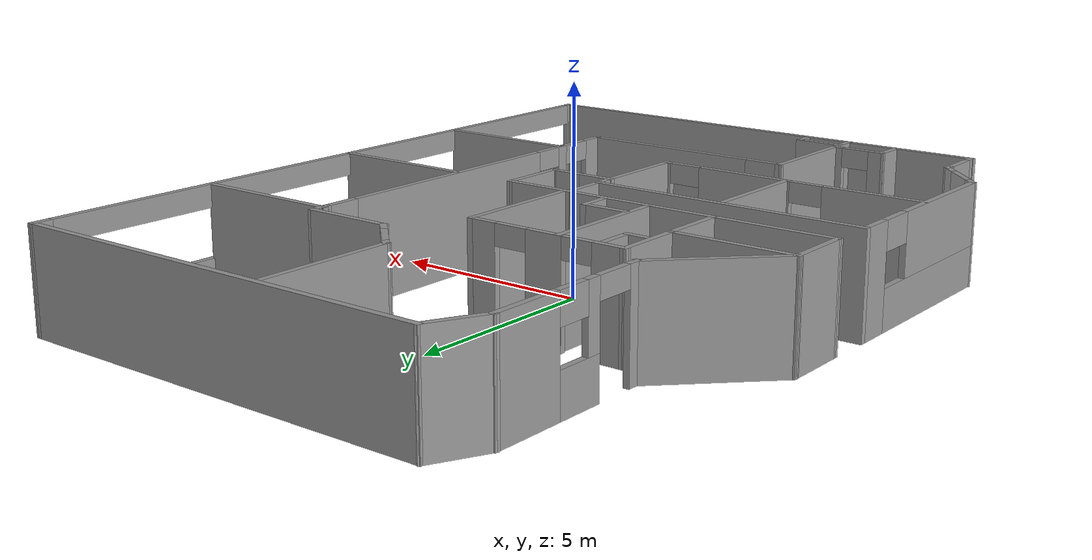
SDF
<?xml version='1.0'?>
<sdf version='1.7'>
  <model name='lake_harbour_office_old'>
    <pose>0.230686 0.066503 0 0 -0 0</pose>
    <link name='Wall_0'>
      <pose>0.435117 -5.60543 0 0 -0 2e-06</pose>
      <visual name='Wall_0_Visual_0'>
        <pose>-2.75685 0 1.25 0 -0 0</pose>
        <geometry>
          <box>
            <size>0.194017 0.15 2.5</size>
          </box>
        </geometry>
        <material>
          <script>
            <uri>file://media/materials/scripts/gazebo.material</uri>
            <name>Gazebo/Grey</name>
          </script>
          <ambient>1 1 1 1</ambient>
        </material>
        <meta>
          <layer>0</layer>
        </meta>
      </visual>
      <collision name='Wall_0_Collision_0'>
        <geometry>
          <box>
            <size>0.194017 0.15 2.5</size>
          </box>
        </geometry>
        <pose>-2.75685 0 1.25 0 -0 0</pose>
      </collision>
      <visual name='Wall_0_Visual_1'>
        <pose>0.513518 0 1.25 0 -0 0</pose>
        <geometry>
          <box>
            <size>4.68067 0.15 2.5</size>
          </box>
        </geometry>
        <material>
          <script>
            <uri>file://media/materials/scripts/gazebo.material</uri>
            <name>Gazebo/Grey</name>
          </script>
          <ambient>1 1 1 1</ambient>
        </material>
        <meta>
          <layer>0</layer>
        </meta>
      </visual>
      <collision name='Wall_0_Collision_1'>
        <geometry>
          <box>
            <size>4.68067 0.15 2.5</size>
          </box>
        </geometry>
        <pose>0.513518 0 1.25 0 -0 0</pose>
      </collision>
      <visual name='Wall_0_Visual_2'>
        <pose>-2.24333 0 2.25 0 -0 0</pose>
        <geometry>
          <box>
            <size>0.833019 0.15 0.5</size>
          </box>
        </geometry>
        <material>
          <script>
            <uri>file://media/materials/scripts/gazebo.material</uri>
            <name>Gazebo/Grey</name>
          </script>
          <ambient>1 1 1 1</ambient>
        </material>
        <meta>
          <layer>0</layer>
        </meta>
      </visual>
      <collision name='Wall_0_Collision_2'>
        <geometry>
          <box>
            <size>0.833019 0.15 0.5</size>
          </box>
        </geometry>
        <pose>-2.24333 0 2.25 0 -0 0</pose>
      </collision>
    </link>
    <link name='Wall_1'>
      <pose>3.2104 -0.472625 0 0 -0 1.57149</pose>
      <visual name='Wall_1_Visual_0'>
        <pose>-4.88335 0 1.25 0 -0 0</pose>
        <geometry>
          <box>
            <size>0.648917 0.15 2.5</size>
          </box>
        </geometry>
        <material>
          <script>
            <uri>file://media/materials/scripts/gazebo.material</uri>
            <name>Gazebo/Grey</name>
          </script>
          <ambient>1 1 1 1</ambient>
        </material>
        <meta>
          <layer>0</layer>
        </meta>
      </visual>
      <collision name='Wall_1_Collision_0'>
        <geometry>
          <box>
            <size>0.648917 0.15 2.5</size>
          </box>
        </geometry>
        <pose>-4.88335 0 1.25 0 -0 0</pose>
      </collision>
      <visual name='Wall_1_Visual_1'>
        <pose>-3.55701 0 1.25 0 -0 0</pose>
        <geometry>
          <box>
            <size>0.313004 0.15 2.5</size>
          </box>
        </geometry>
        <material>
          <script>
            <uri>file://media/materials/scripts/gazebo.material</uri>
            <name>Gazebo/Grey</name>
          </script>
          <ambient>1 1 1 1</ambient>
        </material>
        <meta>
          <layer>0</layer>
        </meta>
      </visual>
      <collision name='Wall_1_Collision_1'>
        <geometry>
          <box>
            <size>0.313004 0.15 2.5</size>
          </box>
        </geometry>
        <pose>-3.55701 0 1.25 0 -0 0</pose>
      </collision>
      <visual name='Wall_1_Visual_2'>
        <pose>0.61801 0 1.25 0 -0 0</pose>
        <geometry>
          <box>
            <size>6.45307 0.15 2.5</size>
          </box>
        </geometry>
        <material>
          <script>
            <uri>file://media/materials/scripts/gazebo.material</uri>
            <name>Gazebo/Grey</name>
          </script>
          <ambient>1 1 1 1</ambient>
        </material>
        <meta>
          <layer>0</layer>
        </meta>
      </visual>
      <collision name='Wall_1_Collision_2'>
        <geometry>
          <box>
            <size>6.45307 0.15 2.5</size>
          </box>
        </geometry>
        <pose>0.61801 0 1.25 0 -0 0</pose>
      </collision>
      <visual name='Wall_1_Visual_3'>
        <pose>4.9339 0 1.25 0 -0 0</pose>
        <geometry>
          <box>
            <size>0.54781 0.15 2.5</size>
          </box>
        </geometry>
        <material>
          <script>
            <uri>file://media/materials/scripts/gazebo.material</uri>
            <name>Gazebo/Grey</name>
          </script>
          <ambient>1 1 1 1</ambient>
        </material>
        <meta>
          <layer>0</layer>
        </meta>
      </visual>
      <collision name='Wall_1_Collision_3'>
        <geometry>
          <box>
            <size>0.54781 0.15 2.5</size>
          </box>
        </geometry>
        <pose>4.9339 0 1.25 0 -0 0</pose>
      </collision>
      <visual name='Wall_1_Visual_4'>
        <pose>-4.1362 0 2.25 0 -0 0</pose>
        <geometry>
          <box>
            <size>0.845376 0.15 0.5</size>
          </box>
        </geometry>
        <material>
          <script>
            <uri>file://media/materials/scripts/gazebo.material</uri>
            <name>Gazebo/Grey</name>
          </script>
          <ambient>1 1 1 1</ambient>
        </material>
        <meta>
          <layer>0</layer>
        </meta>
      </visual>
      <collision name='Wall_1_Collision_4'>
        <geometry>
          <box>
            <size>0.845376 0.15 0.5</size>
          </box>
        </geometry>
        <pose>-4.1362 0 2.25 0 -0 0</pose>
      </collision>
      <visual name='Wall_1_Visual_5'>
        <pose>-3.00452 0 2.25 0 -0 0</pose>
        <geometry>
          <box>
            <size>0.79198 0.15 0.5</size>
          </box>
        </geometry>
        <material>
          <script>
            <uri>file://media/materials/scripts/gazebo.material</uri>
            <name>Gazebo/Grey</name>
          </script>
          <ambient>1 1 1 1</ambient>
        </material>
        <meta>
          <layer>0</layer>
        </meta>
      </visual>
      <collision name='Wall_1_Collision_5'>
        <geometry>
          <box>
            <size>0.79198 0.15 0.5</size>
          </box>
        </geometry>
        <pose>-3.00452 0 2.25 0 -0 0</pose>
      </collision>
      <visual name='Wall_1_Visual_6'>
        <pose>4.25227 0 2.25 0 -0 0</pose>
        <geometry>
          <box>
            <size>0.815447 0.15 0.5</size>
          </box>
        </geometry>
        <material>
          <script>
            <uri>file://media/materials/scripts/gazebo.material</uri>
            <name>Gazebo/Grey</name>
          </script>
          <ambient>1 1 1 1</ambient>
        </material>
        <meta>
          <layer>0</layer>
        </meta>
      </visual>
      <collision name='Wall_1_Collision_6'>
        <geometry>
          <box>
            <size>0.815447 0.15 0.5</size>
          </box>
        </geometry>
        <pose>4.25227 0 2.25 0 -0 0</pose>
      </collision>
    </link>
    <link name='Wall_13'>
      <collision name='Wall_13_Collision'>
        <geometry>
          <box>
            <size>10.9751 0.15 2.5</size>
          </box>
        </geometry>
        <pose>0 0 1.25 0 -0 0</pose>
      </collision>
      <visual name='Wall_13_Visual'>
        <pose>0 0 1.25 0 -0 0</pose>
        <geometry>
          <box>
            <size>10.9751 0.15 2.5</size>
          </box>
        </geometry>
        <material>
          <script>
            <uri>file://media/materials/scripts/gazebo.material</uri>
            <name>Gazebo/Grey</name>
          </script>
          <ambient>1 1 1 1</ambient>
        </material>
        <meta>
          <layer>0</layer>
        </meta>
      </visual>
      <pose>1.45427 9.08491 0 0 -0 3.14142</pose>
    </link>
    <link name='Wall_17'>
      <pose>6.85256 -0.013794 0 0 -0 1.56923</pose>
      <visual name='Wall_17_Visual_0'>
        <pose>-9.06139 0 1.25 0 -0 0</pose>
        <geometry>
          <box>
            <size>0.222803 0.15 2.5</size>
          </box>
        </geometry>
        <material>
          <script>
            <uri>file://media/materials/scripts/gazebo.material</uri>
            <name>Gazebo/Grey</name>
          </script>
          <ambient>1 1 1 1</ambient>
        </material>
        <meta>
          <layer>0</layer>
        </meta>
      </visual>
      <collision name='Wall_17_Collision_0'>
        <geometry>
          <box>
            <size>0.222803 0.15 2.5</size>
          </box>
        </geometry>
        <pose>-9.06139 0 1.25 0 -0 0</pose>
      </collision>
      <visual name='Wall_17_Visual_1'>
        <pose>0.111402 0 0.375 0 -0 0</pose>
        <geometry>
          <box>
            <size>18.1228 0.15 0.75</size>
          </box>
        </geometry>
        <material>
          <script>
            <uri>file://media/materials/scripts/gazebo.material</uri>
            <name>Gazebo/Grey</name>
          </script>
          <ambient>1 1 1 1</ambient>
        </material>
        <meta>
          <layer>0</layer>
        </meta>
      </visual>
      <collision name='Wall_17_Collision_1'>
        <geometry>
          <box>
            <size>18.1228 0.15 0.75</size>
          </box>
        </geometry>
        <pose>0.111402 0 0.375 0 -0 0</pose>
      </collision>
      <visual name='Wall_17_Visual_2'>
        <pose>8.9214 0 1.625 0 -0 0</pose>
        <geometry>
          <box>
            <size>0.502774 0.15 1.75</size>
          </box>
        </geometry>
        <material>
          <script>
            <uri>file://media/materials/scripts/gazebo.material</uri>
            <name>Gazebo/Grey</name>
          </script>
          <ambient>1 1 1 1</ambient>
        </material>
        <meta>
          <layer>0</layer>
        </meta>
      </visual>
      <collision name='Wall_17_Collision_2'>
        <geometry>
          <box>
            <size>0.502774 0.15 1.75</size>
          </box>
        </geometry>
        <pose>8.9214 0 1.625 0 -0 0</pose>
      </collision>
      <visual name='Wall_17_Visual_3'>
        <pose>-0.139985 0 2.225 0 -0 0</pose>
        <geometry>
          <box>
            <size>17.62 0.15 0.55</size>
          </box>
        </geometry>
        <material>
          <script>
            <uri>file://media/materials/scripts/gazebo.material</uri>
            <name>Gazebo/Grey</name>
          </script>
          <ambient>1 1 1 1</ambient>
        </material>
        <meta>
          <layer>0</layer>
        </meta>
      </visual>
      <collision name='Wall_17_Collision_3'>
        <geometry>
          <box>
            <size>17.62 0.15 0.55</size>
          </box>
        </geometry>
        <pose>-0.139985 0 2.225 0 -0 0</pose>
      </collision>
    </link>
    <link name='Wall_19'>
      <collision name='Wall_19_Collision'>
        <geometry>
          <box>
            <size>3.67 0.15 2.5</size>
          </box>
        </geometry>
        <pose>0 0 1.25 0 -0 0</pose>
      </collision>
      <visual name='Wall_19_Visual'>
        <pose>0 0 1.25 0 -0 0</pose>
        <geometry>
          <box>
            <size>3.67 0.15 2.5</size>
          </box>
        </geometry>
        <material>
          <script>
            <uri>file://media/materials/scripts/gazebo.material</uri>
            <name>Gazebo/Grey</name>
          </script>
          <ambient>1 1 1 1</ambient>
        </material>
        <meta>
          <layer>0</layer>
        </meta>
      </visual>
      <pose>5.00431 -4.0195 0 0 -0 0</pose>
    </link>
    <link name='Wall_24'>
      <collision name='Wall_24_Collision'>
        <geometry>
          <box>
            <size>3.64297 0.15 2.5</size>
          </box>
        </geometry>
        <pose>0 0 1.25 0 -0 0</pose>
      </collision>
      <visual name='Wall_24_Visual'>
        <pose>0 0 1.25 0 -0 0</pose>
        <geometry>
          <box>
            <size>3.64297 0.15 2.5</size>
          </box>
        </geometry>
        <material>
          <script>
            <uri>file://media/materials/scripts/gazebo.material</uri>
            <name>Gazebo/Grey</name>
          </script>
          <ambient>1 1 1 1</ambient>
        </material>
        <meta>
          <layer>0</layer>
        </meta>
      </visual>
      <pose>-2.34637 -7.35192 0 0 -0 -1.57231</pose>
    </link>
    <link name='Wall_26'>
      <collision name='Wall_26_Collision'>
        <geometry>
          <box>
            <size>1.5119 0.15 2.5</size>
          </box>
        </geometry>
        <pose>0 0 1.25 0 -0 0</pose>
      </collision>
      <visual name='Wall_26_Visual'>
        <pose>0 0 1.25 0 -0 0</pose>
        <geometry>
          <box>
            <size>1.5119 0.15 2.5</size>
          </box>
        </geometry>
        <material>
          <script>
            <uri>file://media/materials/scripts/gazebo.material</uri>
            <name>Gazebo/Grey</name>
          </script>
          <ambient>1 1 1 1</ambient>
        </material>
        <meta>
          <layer>0</layer>
        </meta>
      </visual>
      <pose>-4.26687 8.47883 0 0 -0 -2.04113</pose>
    </link>
    <link name='Wall_28'>
      <pose>-4.57547 5.77869 0 0 -0 -1.5708</pose>
      <visual name='Wall_28_Visual_0'>
        <pose>-1.26092 0 1.25 0 -0 0</pose>
        <geometry>
          <box>
            <size>1.81443 0.15 2.5</size>
          </box>
        </geometry>
        <material>
          <script>
            <uri>file://media/materials/scripts/gazebo.material</uri>
            <name>Gazebo/Grey</name>
          </script>
          <ambient>1 1 1 1</ambient>
        </material>
        <meta>
          <layer>0</layer>
        </meta>
      </visual>
      <collision name='Wall_28_Collision_0'>
        <geometry>
          <box>
            <size>1.81443 0.15 2.5</size>
          </box>
        </geometry>
        <pose>-1.26092 0 1.25 0 -0 0</pose>
      </collision>
      <visual name='Wall_28_Visual_1'>
        <pose>1.98545 0 1.25 0 -0 0</pose>
        <geometry>
          <box>
            <size>0.365381 0.15 2.5</size>
          </box>
        </geometry>
        <material>
          <script>
            <uri>file://media/materials/scripts/gazebo.material</uri>
            <name>Gazebo/Grey</name>
          </script>
          <ambient>1 1 1 1</ambient>
        </material>
        <meta>
          <layer>0</layer>
        </meta>
      </visual>
      <collision name='Wall_28_Collision_1'>
        <geometry>
          <box>
            <size>0.365381 0.15 2.5</size>
          </box>
        </geometry>
        <pose>1.98545 0 1.25 0 -0 0</pose>
      </collision>
      <visual name='Wall_28_Visual_2'>
        <pose>0.244026 0 0.5 0 -0 0</pose>
        <geometry>
          <box>
            <size>1.19547 0.15 1</size>
          </box>
        </geometry>
        <material>
          <script>
            <uri>file://media/materials/scripts/gazebo.material</uri>
            <name>Gazebo/Grey</name>
          </script>
          <ambient>1 1 1 1</ambient>
        </material>
        <meta>
          <layer>0</layer>
        </meta>
      </visual>
      <collision name='Wall_28_Collision_2'>
        <geometry>
          <box>
            <size>1.19547 0.15 1</size>
          </box>
        </geometry>
        <pose>0.244026 0 0.5 0 -0 0</pose>
      </collision>
      <visual name='Wall_28_Visual_3'>
        <pose>0.6643 0 1.75 0 -0 0</pose>
        <geometry>
          <box>
            <size>0.354924 0.15 1.5</size>
          </box>
        </geometry>
        <material>
          <script>
            <uri>file://media/materials/scripts/gazebo.material</uri>
            <name>Gazebo/Grey</name>
          </script>
          <ambient>1 1 1 1</ambient>
        </material>
        <meta>
          <layer>0</layer>
        </meta>
      </visual>
      <collision name='Wall_28_Collision_3'>
        <geometry>
          <box>
            <size>0.354924 0.15 1.5</size>
          </box>
        </geometry>
        <pose>0.6643 0 1.75 0 -0 0</pose>
      </collision>
      <visual name='Wall_28_Visual_4'>
        <pose>0.066565 0 2.15 0 -0 0</pose>
        <geometry>
          <box>
            <size>0.840547 0.15 0.7</size>
          </box>
        </geometry>
        <material>
          <script>
            <uri>file://media/materials/scripts/gazebo.material</uri>
            <name>Gazebo/Grey</name>
          </script>
          <ambient>1 1 1 1</ambient>
        </material>
        <meta>
          <layer>0</layer>
        </meta>
      </visual>
      <collision name='Wall_28_Collision_4'>
        <geometry>
          <box>
            <size>0.840547 0.15 0.7</size>
          </box>
        </geometry>
        <pose>0.066565 0 2.15 0 -0 0</pose>
      </collision>
      <visual name='Wall_28_Visual_5'>
        <pose>1.32226 0 2.25 0 -0 0</pose>
        <geometry>
          <box>
            <size>0.960993 0.15 0.5</size>
          </box>
        </geometry>
        <material>
          <script>
            <uri>file://media/materials/scripts/gazebo.material</uri>
            <name>Gazebo/Grey</name>
          </script>
          <ambient>1 1 1 1</ambient>
        </material>
        <meta>
          <layer>0</layer>
        </meta>
      </visual>
      <collision name='Wall_28_Collision_5'>
        <geometry>
          <box>
            <size>0.960993 0.15 0.5</size>
          </box>
        </geometry>
        <pose>1.32226 0 2.25 0 -0 0</pose>
      </collision>
    </link>
    <link name='Wall_30'>
      <collision name='Wall_30_Collision'>
        <geometry>
          <box>
            <size>3.27185 0.15 2.5</size>
          </box>
        </geometry>
        <pose>0 0 1.25 0 -0 0</pose>
      </collision>
      <visual name='Wall_30_Visual'>
        <pose>0 0 1.25 0 -0 0</pose>
        <geometry>
          <box>
            <size>3.27185 0.15 2.5</size>
          </box>
        </geometry>
        <material>
          <script>
            <uri>file://media/materials/scripts/gazebo.material</uri>
            <name>Gazebo/Grey</name>
          </script>
          <ambient>1 1 1 1</ambient>
        </material>
        <meta>
          <layer>0</layer>
        </meta>
      </visual>
      <pose>-5.6836 2.58621 0 0 -0 -2.36018</pose>
    </link>
    <link name='Wall_32'>
      <collision name='Wall_32_Collision'>
        <geometry>
          <box>
            <size>1.75 0.15 2.5</size>
          </box>
        </geometry>
        <pose>0 0 1.25 0 -0 0</pose>
      </collision>
      <visual name='Wall_32_Visual'>
        <pose>0 0 1.25 0 -0 0</pose>
        <geometry>
          <box>
            <size>1.75 0.15 2.5</size>
          </box>
        </geometry>
        <material>
          <script>
            <uri>file://media/materials/scripts/gazebo.material</uri>
            <name>Gazebo/Grey</name>
          </script>
          <ambient>1 1 1 1</ambient>
        </material>
        <meta>
          <layer>0</layer>
        </meta>
      </visual>
      <pose>-6.80053 0.686876 0 0 -0 -1.5708</pose>
    </link>
    <link name='Wall_34'>
      <collision name='Wall_34_Collision'>
        <geometry>
          <box>
            <size>8.56728 0.15 2.5</size>
          </box>
        </geometry>
        <pose>0 0 1.25 0 -0 0</pose>
      </collision>
      <visual name='Wall_34_Visual'>
        <pose>0 0 1.25 0 -0 0</pose>
        <geometry>
          <box>
            <size>8.56728 0.15 2.5</size>
          </box>
        </geometry>
        <material>
          <script>
            <uri>file://media/materials/scripts/gazebo.material</uri>
            <name>Gazebo/Grey</name>
          </script>
          <ambient>1 1 1 1</ambient>
        </material>
        <meta>
          <layer>0</layer>
        </meta>
      </visual>
      <pose>-2.59189 -0.111503 0 0 -0 0.000385</pose>
    </link>
    <link name='Wall_38'>
      <collision name='Wall_38_Collision'>
        <geometry>
          <box>
            <size>2.25 0.15 2.5</size>
          </box>
        </geometry>
        <pose>0 0 1.25 0 -0 0</pose>
      </collision>
      <visual name='Wall_38_Visual'>
        <pose>0 0 1.25 0 -0 0</pose>
        <geometry>
          <box>
            <size>2.25 0.15 2.5</size>
          </box>
        </geometry>
        <material>
          <script>
            <uri>file://media/materials/scripts/gazebo.material</uri>
            <name>Gazebo/Grey</name>
          </script>
          <ambient>1 1 1 1</ambient>
        </material>
        <meta>
          <layer>0</layer>
        </meta>
      </visual>
      <pose>2.15684 4.66018 0 0 -0 3.14159</pose>
    </link>
    <link name='Wall_39'>
      <pose>0.56627 5.18296 0 0 -0 2.37292</pose>
      <visual name='Wall_39_Visual_0'>
        <pose>-0.606997 0 1.25 0 -0 0</pose>
        <geometry>
          <box>
            <size>0.440013 0.15 2.5</size>
          </box>
        </geometry>
        <material>
          <script>
            <uri>file://media/materials/scripts/gazebo.material</uri>
            <name>Gazebo/Grey</name>
          </script>
          <ambient>1 1 1 1</ambient>
        </material>
        <meta>
          <layer>0</layer>
        </meta>
      </visual>
      <collision name='Wall_39_Collision_0'>
        <geometry>
          <box>
            <size>0.440013 0.15 2.5</size>
          </box>
        </geometry>
        <pose>-0.606997 0 1.25 0 -0 0</pose>
      </collision>
      <visual name='Wall_39_Visual_1'>
        <pose>0.676953 0 1.25 0 -0 0</pose>
        <geometry>
          <box>
            <size>0.300101 0.15 2.5</size>
          </box>
        </geometry>
        <material>
          <script>
            <uri>file://media/materials/scripts/gazebo.material</uri>
            <name>Gazebo/Grey</name>
          </script>
          <ambient>1 1 1 1</ambient>
        </material>
        <meta>
          <layer>0</layer>
        </meta>
      </visual>
      <collision name='Wall_39_Collision_1'>
        <geometry>
          <box>
            <size>0.300101 0.15 2.5</size>
          </box>
        </geometry>
        <pose>0.676953 0 1.25 0 -0 0</pose>
      </collision>
      <visual name='Wall_39_Visual_2'>
        <pose>0.069956 0 2.25 0 -0 0</pose>
        <geometry>
          <box>
            <size>0.913893 0.15 0.5</size>
          </box>
        </geometry>
        <material>
          <script>
            <uri>file://media/materials/scripts/gazebo.material</uri>
            <name>Gazebo/Grey</name>
          </script>
          <ambient>1 1 1 1</ambient>
        </material>
        <meta>
          <layer>0</layer>
        </meta>
      </visual>
      <collision name='Wall_39_Collision_2'>
        <geometry>
          <box>
            <size>0.913893 0.15 0.5</size>
          </box>
        </geometry>
        <pose>0.069956 0 2.25 0 -0 0</pose>
      </collision>
    </link>
    <link name='Wall_43'>
      <collision name='Wall_43_Collision'>
        <geometry>
          <box>
            <size>3.5 0.15 2.5</size>
          </box>
        </geometry>
        <pose>0 0 1.25 0 -0 0</pose>
      </collision>
      <visual name='Wall_43_Visual'>
        <pose>0 0 1.25 0 -0 0</pose>
        <geometry>
          <box>
            <size>3.5 0.15 2.5</size>
          </box>
        </geometry>
        <material>
          <script>
            <uri>file://media/materials/scripts/gazebo.material</uri>
            <name>Gazebo/Grey</name>
          </script>
          <ambient>1 1 1 1</ambient>
        </material>
        <meta>
          <layer>0</layer>
        </meta>
      </visual>
      <pose>0.025706 7.38074 0 0 -0 1.5708</pose>
    </link>
    <link name='Wall_46'>
      <collision name='Wall_46_Collision'>
        <geometry>
          <box>
            <size>3.06184 0.15 2.5</size>
          </box>
        </geometry>
        <pose>0 0 1.25 0 -0 0</pose>
      </collision>
      <visual name='Wall_46_Visual'>
        <pose>0 0 1.25 0 -0 0</pose>
        <geometry>
          <box>
            <size>3.06184 0.15 2.5</size>
          </box>
        </geometry>
        <material>
          <script>
            <uri>file://media/materials/scripts/gazebo.material</uri>
            <name>Gazebo/Grey</name>
          </script>
          <ambient>1 1 1 1</ambient>
        </material>
        <meta>
          <layer>0</layer>
        </meta>
      </visual>
      <pose>-5.34461 1.48325 0 0 -0 -0.002488</pose>
    </link>
    <link name='Wall_48'>
      <collision name='Wall_48_Collision'>
        <geometry>
          <box>
            <size>1.75 0.15 2.5</size>
          </box>
        </geometry>
        <pose>0 0 1.25 0 -0 0</pose>
      </collision>
      <visual name='Wall_48_Visual'>
        <pose>0 0 1.25 0 -0 0</pose>
        <geometry>
          <box>
            <size>1.75 0.15 2.5</size>
          </box>
        </geometry>
        <material>
          <script>
            <uri>file://media/materials/scripts/gazebo.material</uri>
            <name>Gazebo/Grey</name>
          </script>
          <ambient>1 1 1 1</ambient>
        </material>
        <meta>
          <layer>0</layer>
        </meta>
      </visual>
      <pose>-3.88869 0.693247 0 0 -0 1.5708</pose>
    </link>
    <link name='Wall_49'>
      <collision name='Wall_49_Collision'>
        <geometry>
          <box>
            <size>1.74836 0.15 2.5</size>
          </box>
        </geometry>
        <pose>0 0 1.25 0 -0 0</pose>
      </collision>
      <visual name='Wall_49_Visual'>
        <pose>0 0 1.25 0 -0 0</pose>
        <geometry>
          <box>
            <size>1.74836 0.15 2.5</size>
          </box>
        </geometry>
        <material>
          <script>
            <uri>file://media/materials/scripts/gazebo.material</uri>
            <name>Gazebo/Grey</name>
          </script>
          <ambient>1 1 1 1</ambient>
        </material>
        <meta>
          <layer>0</layer>
        </meta>
      </visual>
      <pose>-3.88939 2.29243 0 0 -0 1.57167</pose>
    </link>
    <link name='Wall_50'>
      <pose>-1.92323 3.09226 0 0 -0 0.000329</pose>
      <visual name='Wall_50_Visual_0'>
        <pose>-1.62279 0 1.25 0 -0 0</pose>
        <geometry>
          <box>
            <size>0.838129 0.15 2.5</size>
          </box>
        </geometry>
        <material>
          <script>
            <uri>file://media/materials/scripts/gazebo.material</uri>
            <name>Gazebo/Grey</name>
          </script>
          <ambient>1 1 1 1</ambient>
        </material>
        <meta>
          <layer>0</layer>
        </meta>
      </visual>
      <collision name='Wall_50_Collision_0'>
        <geometry>
          <box>
            <size>0.838129 0.15 2.5</size>
          </box>
        </geometry>
        <pose>-1.62279 0 1.25 0 -0 0</pose>
      </collision>
      <visual name='Wall_50_Visual_1'>
        <pose>0.017174 0 1.25 0 -0 0</pose>
        <geometry>
          <box>
            <size>0.922542 0.15 2.5</size>
          </box>
        </geometry>
        <material>
          <script>
            <uri>file://media/materials/scripts/gazebo.material</uri>
            <name>Gazebo/Grey</name>
          </script>
          <ambient>1 1 1 1</ambient>
        </material>
        <meta>
          <layer>0</layer>
        </meta>
      </visual>
      <collision name='Wall_50_Collision_1'>
        <geometry>
          <box>
            <size>0.922542 0.15 2.5</size>
          </box>
        </geometry>
        <pose>0.017174 0 1.25 0 -0 0</pose>
      </collision>
      <visual name='Wall_50_Visual_2'>
        <pose>1.6667 0 1.25 0 -0 0</pose>
        <geometry>
          <box>
            <size>0.750303 0.15 2.5</size>
          </box>
        </geometry>
        <material>
          <script>
            <uri>file://media/materials/scripts/gazebo.material</uri>
            <name>Gazebo/Grey</name>
          </script>
          <ambient>1 1 1 1</ambient>
        </material>
        <meta>
          <layer>0</layer>
        </meta>
      </visual>
      <collision name='Wall_50_Collision_2'>
        <geometry>
          <box>
            <size>0.750303 0.15 2.5</size>
          </box>
        </geometry>
        <pose>1.6667 0 1.25 0 -0 0</pose>
      </collision>
      <visual name='Wall_50_Visual_3'>
        <pose>-0.823912 0 2.25 0 -0 0</pose>
        <geometry>
          <box>
            <size>0.759629 0.15 0.5</size>
          </box>
        </geometry>
        <material>
          <script>
            <uri>file://media/materials/scripts/gazebo.material</uri>
            <name>Gazebo/Grey</name>
          </script>
          <ambient>1 1 1 1</ambient>
        </material>
        <meta>
          <layer>0</layer>
        </meta>
      </visual>
      <collision name='Wall_50_Collision_3'>
        <geometry>
          <box>
            <size>0.759629 0.15 0.5</size>
          </box>
        </geometry>
        <pose>-0.823912 0 2.25 0 -0 0</pose>
      </collision>
      <visual name='Wall_50_Visual_4'>
        <pose>0.884999 0 2.25 0 -0 0</pose>
        <geometry>
          <box>
            <size>0.813108 0.15 0.5</size>
          </box>
        </geometry>
        <material>
          <script>
            <uri>file://media/materials/scripts/gazebo.material</uri>
            <name>Gazebo/Grey</name>
          </script>
          <ambient>1 1 1 1</ambient>
        </material>
        <meta>
          <layer>0</layer>
        </meta>
      </visual>
      <collision name='Wall_50_Collision_4'>
        <geometry>
          <box>
            <size>0.813108 0.15 0.5</size>
          </box>
        </geometry>
        <pose>0.884999 0 2.25 0 -0 0</pose>
      </collision>
    </link>
    <link name='Wall_51'>
      <collision name='Wall_51_Collision'>
        <geometry>
          <box>
            <size>3.33647 0.15 2.5</size>
          </box>
        </geometry>
        <pose>0 0 1.25 0 -0 0</pose>
      </collision>
      <visual name='Wall_51_Visual'>
        <pose>0 0 1.25 0 -0 0</pose>
        <geometry>
          <box>
            <size>3.33647 0.15 2.5</size>
          </box>
        </geometry>
        <material>
          <script>
            <uri>file://media/materials/scripts/gazebo.material</uri>
            <name>Gazebo/Grey</name>
          </script>
          <ambient>1 1 1 1</ambient>
        </material>
        <meta>
          <layer>0</layer>
        </meta>
      </visual>
      <pose>0.050344 1.4998 0 0 -0 -1.57077</pose>
    </link>
    <link name='Wall_53'>
      <collision name='Wall_53_Collision'>
        <geometry>
          <box>
            <size>3.25 0.15 2.5</size>
          </box>
        </geometry>
        <pose>0 0 1.25 0 -0 0</pose>
      </collision>
      <visual name='Wall_53_Visual'>
        <pose>0 0 1.25 0 -0 0</pose>
        <geometry>
          <box>
            <size>3.25 0.15 2.5</size>
          </box>
        </geometry>
        <material>
          <script>
            <uri>file://media/materials/scripts/gazebo.material</uri>
            <name>Gazebo/Grey</name>
          </script>
          <ambient>1 1 1 1</ambient>
        </material>
        <meta>
          <layer>0</layer>
        </meta>
      </visual>
      <pose>-2.24582 1.53493 0 0 -0 -1.5708</pose>
    </link>
    <link name='Wall_55'>
      <collision name='Wall_55_Collision'>
        <geometry>
          <box>
            <size>1.05905 0.15 2.5</size>
          </box>
        </geometry>
        <pose>0 0 1.25 0 -0 0</pose>
      </collision>
      <visual name='Wall_55_Visual'>
        <pose>0 0 1.25 0 -0 0</pose>
        <geometry>
          <box>
            <size>1.05905 0.15 2.5</size>
          </box>
        </geometry>
        <material>
          <script>
            <uri>file://media/materials/scripts/gazebo.material</uri>
            <name>Gazebo/Grey</name>
          </script>
          <ambient>1 1 1 1</ambient>
        </material>
        <meta>
          <layer>0</layer>
        </meta>
      </visual>
      <pose>-3.28184 2.62373 0 0 -0 -1.5708</pose>
    </link>
    <link name='Wall_56'>
      <collision name='Wall_56_Collision'>
        <geometry>
          <box>
            <size>0.75 0.15 2.5</size>
          </box>
        </geometry>
        <pose>0 0 1.25 0 -0 0</pose>
      </collision>
      <visual name='Wall_56_Visual'>
        <pose>0 0 1.25 0 -0 0</pose>
        <geometry>
          <box>
            <size>0.75 0.15 2.5</size>
          </box>
        </geometry>
        <material>
          <script>
            <uri>file://media/materials/scripts/gazebo.material</uri>
            <name>Gazebo/Grey</name>
          </script>
          <ambient>1 1 1 1</ambient>
        </material>
        <meta>
          <layer>0</layer>
        </meta>
      </visual>
      <pose>-3.58184 2.16922 0 0 -0 3.14159</pose>
    </link>
    <link name='Wall_58'>
      <collision name='Wall_58_Collision'>
        <geometry>
          <box>
            <size>1.25 0.15 2.5</size>
          </box>
        </geometry>
        <pose>0 0 1.25 0 -0 0</pose>
      </collision>
      <visual name='Wall_58_Visual'>
        <pose>0 0 1.25 0 -0 0</pose>
        <geometry>
          <box>
            <size>1.25 0.15 2.5</size>
          </box>
        </geometry>
        <material>
          <script>
            <uri>file://media/materials/scripts/gazebo.material</uri>
            <name>Gazebo/Grey</name>
          </script>
          <ambient>1 1 1 1</ambient>
        </material>
        <meta>
          <layer>0</layer>
        </meta>
      </visual>
      <pose>-1.63843 0.666154 0 0 -0 0</pose>
    </link>
    <link name='Wall_59'>
      <collision name='Wall_59_Collision'>
        <geometry>
          <box>
            <size>0.887915 0.15 2.5</size>
          </box>
        </geometry>
        <pose>0 0 1.25 0 -0 0</pose>
      </collision>
      <visual name='Wall_59_Visual'>
        <pose>0 0 1.25 0 -0 0</pose>
        <geometry>
          <box>
            <size>0.887915 0.15 2.5</size>
          </box>
        </geometry>
        <material>
          <script>
            <uri>file://media/materials/scripts/gazebo.material</uri>
            <name>Gazebo/Grey</name>
          </script>
          <ambient>1 1 1 1</ambient>
        </material>
        <meta>
          <layer>0</layer>
        </meta>
      </visual>
      <pose>-1.08843 0.297196 0 0 -0 -1.5708</pose>
    </link>
    <link name='Wall_6'>
      <collision name='Wall_6_Collision'>
        <geometry>
          <box>
            <size>12.7032 0.15 2.5</size>
          </box>
        </geometry>
        <pose>0 0 1.25 0 -0 0</pose>
      </collision>
      <visual name='Wall_6_Visual'>
        <pose>0 0 1.25 0 -0 0</pose>
        <geometry>
          <box>
            <size>12.7032 0.15 2.5</size>
          </box>
        </geometry>
        <material>
          <script>
            <uri>file://media/materials/scripts/gazebo.material</uri>
            <name>Gazebo/Grey</name>
          </script>
          <ambient>1 1 1 1</ambient>
        </material>
        <meta>
          <layer>0</layer>
        </meta>
      </visual>
      <pose>0.549997 -9.10971 0 0 -0 3.1413</pose>
    </link>
    <link name='Wall_61'>
      <collision name='Wall_61_Collision'>
        <geometry>
          <box>
            <size>3.72819 0.15 2.5</size>
          </box>
        </geometry>
        <pose>0 0 1.25 0 -0 0</pose>
      </collision>
      <visual name='Wall_61_Visual'>
        <pose>0 0 1.25 0 -0 0</pose>
        <geometry>
          <box>
            <size>3.72819 0.15 2.5</size>
          </box>
        </geometry>
        <material>
          <script>
            <uri>file://media/materials/scripts/gazebo.material</uri>
            <name>Gazebo/Grey</name>
          </script>
          <ambient>1 1 1 1</ambient>
        </material>
        <meta>
          <layer>0</layer>
        </meta>
      </visual>
      <pose>5.01016 -0.065112 0 0 -0 0.001455</pose>
    </link>
    <link name='Wall_66'>
      <collision name='Wall_66_Collision'>
        <geometry>
          <box>
            <size>3.75 0.15 2.5</size>
          </box>
        </geometry>
        <pose>0 0 1.25 0 -0 0</pose>
      </collision>
      <visual name='Wall_66_Visual'>
        <pose>0 0 1.25 0 -0 0</pose>
        <geometry>
          <box>
            <size>3.75 0.15 2.5</size>
          </box>
        </geometry>
        <material>
          <script>
            <uri>file://media/materials/scripts/gazebo.material</uri>
            <name>Gazebo/Grey</name>
          </script>
          <ambient>1 1 1 1</ambient>
        </material>
        <meta>
          <layer>0</layer>
        </meta>
      </visual>
      <pose>4.96435 4.38481 0 0 -0 3.14159</pose>
    </link>
    <link name='Wall_68'>
      <collision name='Wall_68_Collision'>
        <geometry>
          <box>
            <size>1.75 0.15 2.5</size>
          </box>
        </geometry>
        <pose>0 0 1.25 0 -0 0</pose>
      </collision>
      <visual name='Wall_68_Visual'>
        <pose>0 0 1.25 0 -0 0</pose>
        <geometry>
          <box>
            <size>1.75 0.15 2.5</size>
          </box>
        </geometry>
        <material>
          <script>
            <uri>file://media/materials/scripts/gazebo.material</uri>
            <name>Gazebo/Grey</name>
          </script>
          <ambient>1 1 1 1</ambient>
        </material>
        <meta>
          <layer>0</layer>
        </meta>
      </visual>
      <pose>1.61674 -0.909883 0 0 -0 -1.5708</pose>
    </link>
    <link name='Wall_71'>
      <collision name='Wall_71_Collision'>
        <geometry>
          <box>
            <size>6.91429 0.15 2.5</size>
          </box>
        </geometry>
        <pose>0 0 1.25 0 -0 0</pose>
      </collision>
      <visual name='Wall_71_Visual'>
        <pose>0 0 1.25 0 -0 0</pose>
        <geometry>
          <box>
            <size>6.91429 0.15 2.5</size>
          </box>
        </geometry>
        <material>
          <script>
            <uri>file://media/materials/scripts/gazebo.material</uri>
            <name>Gazebo/Grey</name>
          </script>
          <ambient>1 1 1 1</ambient>
        </material>
        <meta>
          <layer>0</layer>
        </meta>
      </visual>
      <pose>-3.45378 -1.24393 0 0 -0 3.14159</pose>
    </link>
    <link name='Wall_72'>
      <pose>-6.83589 -3.91893 0 0 -0 -1.5708</pose>
      <visual name='Wall_72_Visual_0'>
        <pose>-2.27851 0 1.25 0 -0 0</pose>
        <geometry>
          <box>
            <size>0.942978 0.15 2.5</size>
          </box>
        </geometry>
        <material>
          <script>
            <uri>file://media/materials/scripts/gazebo.material</uri>
            <name>Gazebo/Grey</name>
          </script>
          <ambient>1 1 1 1</ambient>
        </material>
        <meta>
          <layer>0</layer>
        </meta>
      </visual>
      <collision name='Wall_72_Collision_0'>
        <geometry>
          <box>
            <size>0.942978 0.15 2.5</size>
          </box>
        </geometry>
        <pose>-2.27851 0 1.25 0 -0 0</pose>
      </collision>
      <visual name='Wall_72_Visual_1'>
        <pose>0.471489 0 0.5 0 -0 0</pose>
        <geometry>
          <box>
            <size>4.55702 0.15 1</size>
          </box>
        </geometry>
        <material>
          <script>
            <uri>file://media/materials/scripts/gazebo.material</uri>
            <name>Gazebo/Grey</name>
          </script>
          <ambient>1 1 1 1</ambient>
        </material>
        <meta>
          <layer>0</layer>
        </meta>
      </visual>
      <collision name='Wall_72_Collision_1'>
        <geometry>
          <box>
            <size>4.55702 0.15 1</size>
          </box>
        </geometry>
        <pose>0.471489 0 0.5 0 -0 0</pose>
      </collision>
      <visual name='Wall_72_Visual_2'>
        <pose>0.942489 0 1.75 0 -0 0</pose>
        <geometry>
          <box>
            <size>3.61502 0.15 1.5</size>
          </box>
        </geometry>
        <material>
          <script>
            <uri>file://media/materials/scripts/gazebo.material</uri>
            <name>Gazebo/Grey</name>
          </script>
          <ambient>1 1 1 1</ambient>
        </material>
        <meta>
          <layer>0</layer>
        </meta>
      </visual>
      <collision name='Wall_72_Collision_2'>
        <geometry>
          <box>
            <size>3.61502 0.15 1.5</size>
          </box>
        </geometry>
        <pose>0.942489 0 1.75 0 -0 0</pose>
      </collision>
      <visual name='Wall_72_Visual_3'>
        <pose>-1.33602 0 2.15 0 -0 0</pose>
        <geometry>
          <box>
            <size>0.942 0.15 0.7</size>
          </box>
        </geometry>
        <material>
          <script>
            <uri>file://media/materials/scripts/gazebo.material</uri>
            <name>Gazebo/Grey</name>
          </script>
          <ambient>1 1 1 1</ambient>
        </material>
        <meta>
          <layer>0</layer>
        </meta>
      </visual>
      <collision name='Wall_72_Collision_3'>
        <geometry>
          <box>
            <size>0.942 0.15 0.7</size>
          </box>
        </geometry>
        <pose>-1.33602 0 2.15 0 -0 0</pose>
      </collision>
    </link>
    <link name='Wall_74'>
      <pose>-6.27356 -7.1759 0 0 -0 -0.80256</pose>
      <visual name='Wall_74_Visual_0'>
        <pose>-0.700482 0 1.25 0 -0 0</pose>
        <geometry>
          <box>
            <size>0.367556 0.15 2.5</size>
          </box>
        </geometry>
        <material>
          <script>
            <uri>file://media/materials/scripts/gazebo.material</uri>
            <name>Gazebo/Grey</name>
          </script>
          <ambient>1 1 1 1</ambient>
        </material>
        <meta>
          <layer>0</layer>
        </meta>
      </visual>
      <collision name='Wall_74_Collision_0'>
        <geometry>
          <box>
            <size>0.367556 0.15 2.5</size>
          </box>
        </geometry>
        <pose>-0.700482 0 1.25 0 -0 0</pose>
      </collision>
      <visual name='Wall_74_Visual_1'>
        <pose>0.183778 0 0.5 0 -0 0</pose>
        <geometry>
          <box>
            <size>1.40096 0.15 1</size>
          </box>
        </geometry>
        <material>
          <script>
            <uri>file://media/materials/scripts/gazebo.material</uri>
            <name>Gazebo/Grey</name>
          </script>
          <ambient>1 1 1 1</ambient>
        </material>
        <meta>
          <layer>0</layer>
        </meta>
      </visual>
      <collision name='Wall_74_Collision_1'>
        <geometry>
          <box>
            <size>1.40096 0.15 1</size>
          </box>
        </geometry>
        <pose>0.183778 0 0.5 0 -0 0</pose>
      </collision>
      <visual name='Wall_74_Visual_2'>
        <pose>0.633778 0 1.75 0 -0 0</pose>
        <geometry>
          <box>
            <size>0.500964 0.15 1.5</size>
          </box>
        </geometry>
        <material>
          <script>
            <uri>file://media/materials/scripts/gazebo.material</uri>
            <name>Gazebo/Grey</name>
          </script>
          <ambient>1 1 1 1</ambient>
        </material>
        <meta>
          <layer>0</layer>
        </meta>
      </visual>
      <collision name='Wall_74_Collision_2'>
        <geometry>
          <box>
            <size>0.500964 0.15 1.5</size>
          </box>
        </geometry>
        <pose>0.633778 0 1.75 0 -0 0</pose>
      </collision>
      <visual name='Wall_74_Visual_3'>
        <pose>-0.066704 0 2.15 0 -0 0</pose>
        <geometry>
          <box>
            <size>0.9 0.15 0.7</size>
          </box>
        </geometry>
        <material>
          <script>
            <uri>file://media/materials/scripts/gazebo.material</uri>
            <name>Gazebo/Grey</name>
          </script>
          <ambient>1 1 1 1</ambient>
        </material>
        <meta>
          <layer>0</layer>
        </meta>
      </visual>
      <collision name='Wall_74_Collision_3'>
        <geometry>
          <box>
            <size>0.9 0.15 0.7</size>
          </box>
        </geometry>
        <pose>-0.066704 0 2.15 0 -0 0</pose>
      </collision>
    </link>
    <link name='Wall_75'>
      <pose>-5.71123 -8.43287 0 0 -0 -1.5708</pose>
      <visual name='Wall_75_Visual_0'>
        <pose>-0.628195 0 1.25 0 -0 0</pose>
        <geometry>
          <box>
            <size>0.24361 0.15 2.5</size>
          </box>
        </geometry>
        <material>
          <script>
            <uri>file://media/materials/scripts/gazebo.material</uri>
            <name>Gazebo/Grey</name>
          </script>
          <ambient>1 1 1 1</ambient>
        </material>
        <meta>
          <layer>0</layer>
        </meta>
      </visual>
      <collision name='Wall_75_Collision_0'>
        <geometry>
          <box>
            <size>0.24361 0.15 2.5</size>
          </box>
        </geometry>
        <pose>-0.628195 0 1.25 0 -0 0</pose>
      </collision>
      <visual name='Wall_75_Visual_1'>
        <pose>0.597709 0 1.25 0 -0 0</pose>
        <geometry>
          <box>
            <size>0.304583 0.15 2.5</size>
          </box>
        </geometry>
        <material>
          <script>
            <uri>file://media/materials/scripts/gazebo.material</uri>
            <name>Gazebo/Grey</name>
          </script>
          <ambient>1 1 1 1</ambient>
        </material>
        <meta>
          <layer>0</layer>
        </meta>
      </visual>
      <collision name='Wall_75_Collision_1'>
        <geometry>
          <box>
            <size>0.304583 0.15 2.5</size>
          </box>
        </geometry>
        <pose>0.597709 0 1.25 0 -0 0</pose>
      </collision>
      <visual name='Wall_75_Visual_2'>
        <pose>-0.030486 0 2.25 0 -0 0</pose>
        <geometry>
          <box>
            <size>0.951807 0.15 0.5</size>
          </box>
        </geometry>
        <material>
          <script>
            <uri>file://media/materials/scripts/gazebo.material</uri>
            <name>Gazebo/Grey</name>
          </script>
          <ambient>1 1 1 1</ambient>
        </material>
        <meta>
          <layer>0</layer>
        </meta>
      </visual>
      <collision name='Wall_75_Collision_2'>
        <geometry>
          <box>
            <size>0.951807 0.15 0.5</size>
          </box>
        </geometry>
        <pose>-0.030486 0 2.25 0 -0 0</pose>
      </collision>
    </link>
    <link name='Wall_77'>
      <collision name='Wall_77_Collision'>
        <geometry>
          <box>
            <size>1.30081 0.15 2.5</size>
          </box>
        </geometry>
        <pose>0 0 1.25 0 -0 0</pose>
      </collision>
      <visual name='Wall_77_Visual'>
        <pose>0 0 1.25 0 -0 0</pose>
        <geometry>
          <box>
            <size>1.30081 0.15 2.5</size>
          </box>
        </geometry>
        <material>
          <script>
            <uri>file://media/materials/scripts/gazebo.material</uri>
            <name>Gazebo/Grey</name>
          </script>
          <ambient>1 1 1 1</ambient>
        </material>
        <meta>
          <layer>0</layer>
        </meta>
      </visual>
      <pose>-1.7645 -8.63537 0 0 -0 0</pose>
    </link>
    <link name='Wall_78'>
      <collision name='Wall_78_Collision'>
        <geometry>
          <box>
            <size>0.5 0.15 2.5</size>
          </box>
        </geometry>
        <pose>0 0 1.25 0 -0 0</pose>
      </collision>
      <visual name='Wall_78_Visual'>
        <pose>0 0 1.25 0 -0 0</pose>
        <geometry>
          <box>
            <size>0.5 0.15 2.5</size>
          </box>
        </geometry>
        <material>
          <script>
            <uri>file://media/materials/scripts/gazebo.material</uri>
            <name>Gazebo/Grey</name>
          </script>
          <ambient>1 1 1 1</ambient>
        </material>
        <meta>
          <layer>0</layer>
        </meta>
      </visual>
      <pose>-1.1891 -8.81037 0 0 -0 -1.5708</pose>
    </link>
    <link name='Wall_80'>
      <collision name='Wall_80_Collision'>
        <geometry>
          <box>
            <size>0.859182 0.15 2.5</size>
          </box>
        </geometry>
        <pose>0 0 1.25 0 -0 0</pose>
      </collision>
      <visual name='Wall_80_Visual'>
        <pose>0 0 1.25 0 -0 0</pose>
        <geometry>
          <box>
            <size>0.859182 0.15 2.5</size>
          </box>
        </geometry>
        <material>
          <script>
            <uri>file://media/materials/scripts/gazebo.material</uri>
            <name>Gazebo/Grey</name>
          </script>
          <ambient>1 1 1 1</ambient>
        </material>
        <meta>
          <layer>0</layer>
        </meta>
      </visual>
      <pose>-3.68253 -8.73417 0 0 -0 1.5544</pose>
    </link>
    <link name='Wall_81'>
      <pose>-3.01412 -8.37382 0 0 -0 0.008772</pose>
      <visual name='Wall_81_Visual_0'>
        <pose>-0.521438 0 1.25 0 -0 0</pose>
        <geometry>
          <box>
            <size>0.432353 0.15 2.5</size>
          </box>
        </geometry>
        <material>
          <script>
            <uri>file://media/materials/scripts/gazebo.material</uri>
            <name>Gazebo/Grey</name>
          </script>
          <ambient>1 1 1 1</ambient>
        </material>
        <meta>
          <layer>0</layer>
        </meta>
      </visual>
      <collision name='Wall_81_Collision_0'>
        <geometry>
          <box>
            <size>0.432353 0.15 2.5</size>
          </box>
        </geometry>
        <pose>-0.521438 0 1.25 0 -0 0</pose>
      </collision>
      <visual name='Wall_81_Visual_1'>
        <pose>0.578589 0 1.25 0 -0 0</pose>
        <geometry>
          <box>
            <size>0.318051 0.15 2.5</size>
          </box>
        </geometry>
        <material>
          <script>
            <uri>file://media/materials/scripts/gazebo.material</uri>
            <name>Gazebo/Grey</name>
          </script>
          <ambient>1 1 1 1</ambient>
        </material>
        <meta>
          <layer>0</layer>
        </meta>
      </visual>
      <collision name='Wall_81_Collision_1'>
        <geometry>
          <box>
            <size>0.318051 0.15 2.5</size>
          </box>
        </geometry>
        <pose>0.578589 0 1.25 0 -0 0</pose>
      </collision>
      <visual name='Wall_81_Visual_2'>
        <pose>0.057151 0 2.25 0 -0 0</pose>
        <geometry>
          <box>
            <size>0.724825 0.15 0.5</size>
          </box>
        </geometry>
        <material>
          <script>
            <uri>file://media/materials/scripts/gazebo.material</uri>
            <name>Gazebo/Grey</name>
          </script>
          <ambient>1 1 1 1</ambient>
        </material>
        <meta>
          <layer>0</layer>
        </meta>
      </visual>
      <collision name='Wall_81_Collision_2'>
        <geometry>
          <box>
            <size>0.724825 0.15 0.5</size>
          </box>
        </geometry>
        <pose>0.057151 0 2.25 0 -0 0</pose>
      </collision>
    </link>
    <link name='Wall_83'>
      <pose>-3.42679 -4.10186 0 0 -0 0</pose>
      <visual name='Wall_83_Visual_0'>
        <pose>-2.17762 0 1.25 0 -0 0</pose>
        <geometry>
          <box>
            <size>2.57178 0.15 2.5</size>
          </box>
        </geometry>
        <material>
          <script>
            <uri>file://media/materials/scripts/gazebo.material</uri>
            <name>Gazebo/Grey</name>
          </script>
          <ambient>1 1 1 1</ambient>
        </material>
        <meta>
          <layer>0</layer>
        </meta>
      </visual>
      <collision name='Wall_83_Collision_0'>
        <geometry>
          <box>
            <size>2.57178 0.15 2.5</size>
          </box>
        </geometry>
        <pose>-2.17762 0 1.25 0 -0 0</pose>
      </collision>
      <visual name='Wall_83_Visual_1'>
        <pose>1.18569 0 1.25 0 -0 0</pose>
        <geometry>
          <box>
            <size>2.47107 0.15 2.5</size>
          </box>
        </geometry>
        <material>
          <script>
            <uri>file://media/materials/scripts/gazebo.material</uri>
            <name>Gazebo/Grey</name>
          </script>
          <ambient>1 1 1 1</ambient>
        </material>
        <meta>
          <layer>0</layer>
        </meta>
      </visual>
      <collision name='Wall_83_Collision_1'>
        <geometry>
          <box>
            <size>2.47107 0.15 2.5</size>
          </box>
        </geometry>
        <pose>1.18569 0 1.25 0 -0 0</pose>
      </collision>
      <visual name='Wall_83_Visual_2'>
        <pose>3.35168 0 1.25 0 -0 0</pose>
        <geometry>
          <box>
            <size>0.22366 0.15 2.5</size>
          </box>
        </geometry>
        <material>
          <script>
            <uri>file://media/materials/scripts/gazebo.material</uri>
            <name>Gazebo/Grey</name>
          </script>
          <ambient>1 1 1 1</ambient>
        </material>
        <meta>
          <layer>0</layer>
        </meta>
      </visual>
      <collision name='Wall_83_Collision_2'>
        <geometry>
          <box>
            <size>0.22366 0.15 2.5</size>
          </box>
        </geometry>
        <pose>3.35168 0 1.25 0 -0 0</pose>
      </collision>
      <visual name='Wall_83_Visual_3'>
        <pose>-0.470787 0 2.25 0 -0 0</pose>
        <geometry>
          <box>
            <size>0.841878 0.15 0.5</size>
          </box>
        </geometry>
        <material>
          <script>
            <uri>file://media/materials/scripts/gazebo.material</uri>
            <name>Gazebo/Grey</name>
          </script>
          <ambient>1 1 1 1</ambient>
        </material>
        <meta>
          <layer>0</layer>
        </meta>
      </visual>
      <collision name='Wall_83_Collision_3'>
        <geometry>
          <box>
            <size>0.841878 0.15 0.5</size>
          </box>
        </geometry>
        <pose>-0.470787 0 2.25 0 -0 0</pose>
      </collision>
      <visual name='Wall_83_Visual_4'>
        <pose>2.83053 0 2.25 0 -0 0</pose>
        <geometry>
          <box>
            <size>0.818629 0.15 0.5</size>
          </box>
        </geometry>
        <material>
          <script>
            <uri>file://media/materials/scripts/gazebo.material</uri>
            <name>Gazebo/Grey</name>
          </script>
          <ambient>1 1 1 1</ambient>
        </material>
        <meta>
          <layer>0</layer>
        </meta>
      </visual>
      <collision name='Wall_83_Collision_4'>
        <geometry>
          <box>
            <size>0.818629 0.15 0.5</size>
          </box>
        </geometry>
        <pose>2.83053 0 2.25 0 -0 0</pose>
      </collision>
    </link>
    <link name='Wall_84'>
      <collision name='Wall_84_Collision'>
        <geometry>
          <box>
            <size>4.14879 0.15 2.5</size>
          </box>
        </geometry>
        <pose>0 0 1.25 0 -0 0</pose>
      </collision>
      <visual name='Wall_84_Visual'>
        <pose>0 0 1.25 0 -0 0</pose>
        <geometry>
          <box>
            <size>4.14879 0.15 2.5</size>
          </box>
        </geometry>
        <material>
          <script>
            <uri>file://media/materials/scripts/gazebo.material</uri>
            <name>Gazebo/Grey</name>
          </script>
          <ambient>1 1 1 1</ambient>
        </material>
        <meta>
          <layer>0</layer>
        </meta>
      </visual>
      <pose>-0.044096 -2.10247 0 0 -0 1.5737</pose>
    </link>
    <link name='Wall_86'>
      <collision name='Wall_86_Collision'>
        <geometry>
          <box>
            <size>2.97475 0.15 2.5</size>
          </box>
        </geometry>
        <pose>0 0 1.25 0 -0 0</pose>
      </collision>
      <visual name='Wall_86_Visual'>
        <pose>0 0 1.25 0 -0 0</pose>
        <geometry>
          <box>
            <size>2.97475 0.15 2.5</size>
          </box>
        </geometry>
        <material>
          <script>
            <uri>file://media/materials/scripts/gazebo.material</uri>
            <name>Gazebo/Grey</name>
          </script>
          <ambient>1 1 1 1</ambient>
        </material>
        <meta>
          <layer>0</layer>
        </meta>
      </visual>
      <pose>-3.34542 -2.66625 0 0 -0 1.56668</pose>
    </link>
    <link name='Wall_88'>
      <pose>0.781734 -1.70595 0 0 -0 -0.004714</pose>
      <visual name='Wall_88_Visual_0'>
        <pose>-0.449188 0 1.25 0 -0 0</pose>
        <geometry>
          <box>
            <size>0.921653 0.15 2.5</size>
          </box>
        </geometry>
        <material>
          <script>
            <uri>file://media/materials/scripts/gazebo.material</uri>
            <name>Gazebo/Grey</name>
          </script>
          <ambient>1 1 1 1</ambient>
        </material>
        <meta>
          <layer>0</layer>
        </meta>
      </visual>
      <collision name='Wall_88_Collision_0'>
        <geometry>
          <box>
            <size>0.921653 0.15 2.5</size>
          </box>
        </geometry>
        <pose>-0.449188 0 1.25 0 -0 0</pose>
      </collision>
      <visual name='Wall_88_Visual_1'>
        <pose>0.817346 0 1.25 0 -0 0</pose>
        <geometry>
          <box>
            <size>0.185338 0.15 2.5</size>
          </box>
        </geometry>
        <material>
          <script>
            <uri>file://media/materials/scripts/gazebo.material</uri>
            <name>Gazebo/Grey</name>
          </script>
          <ambient>1 1 1 1</ambient>
        </material>
        <meta>
          <layer>0</layer>
        </meta>
      </visual>
      <collision name='Wall_88_Collision_1'>
        <geometry>
          <box>
            <size>0.185338 0.15 2.5</size>
          </box>
        </geometry>
        <pose>0.817346 0 1.25 0 -0 0</pose>
      </collision>
      <visual name='Wall_88_Visual_2'>
        <pose>0.368158 0 2.25 0 -0 0</pose>
        <geometry>
          <box>
            <size>0.713039 0.15 0.5</size>
          </box>
        </geometry>
        <material>
          <script>
            <uri>file://media/materials/scripts/gazebo.material</uri>
            <name>Gazebo/Grey</name>
          </script>
          <ambient>1 1 1 1</ambient>
        </material>
        <meta>
          <layer>0</layer>
        </meta>
      </visual>
      <collision name='Wall_88_Collision_2'>
        <geometry>
          <box>
            <size>0.713039 0.15 0.5</size>
          </box>
        </geometry>
        <pose>0.368158 0 2.25 0 -0 0</pose>
      </collision>
    </link>
    <static>1</static>
  </model>
</sdf>
